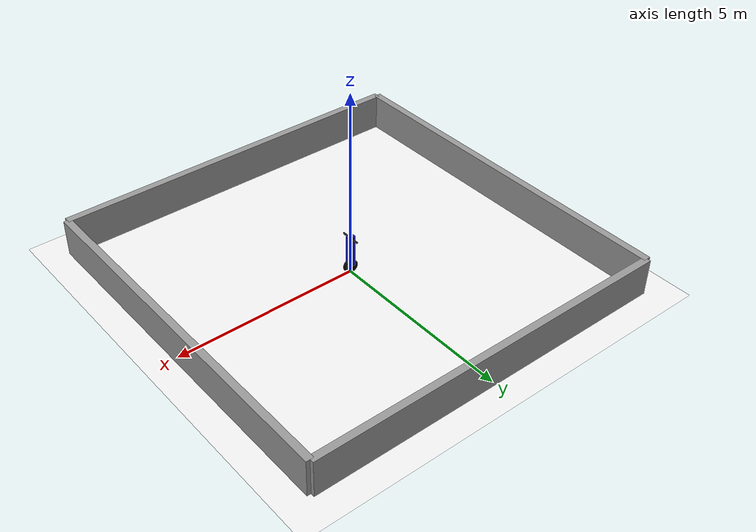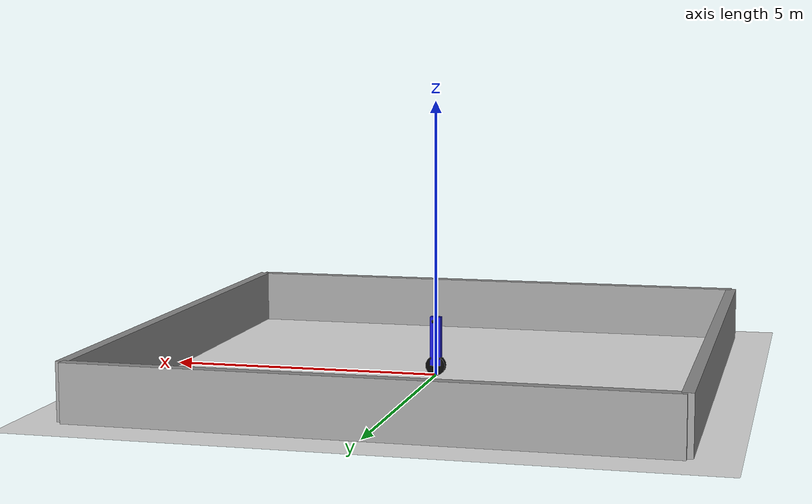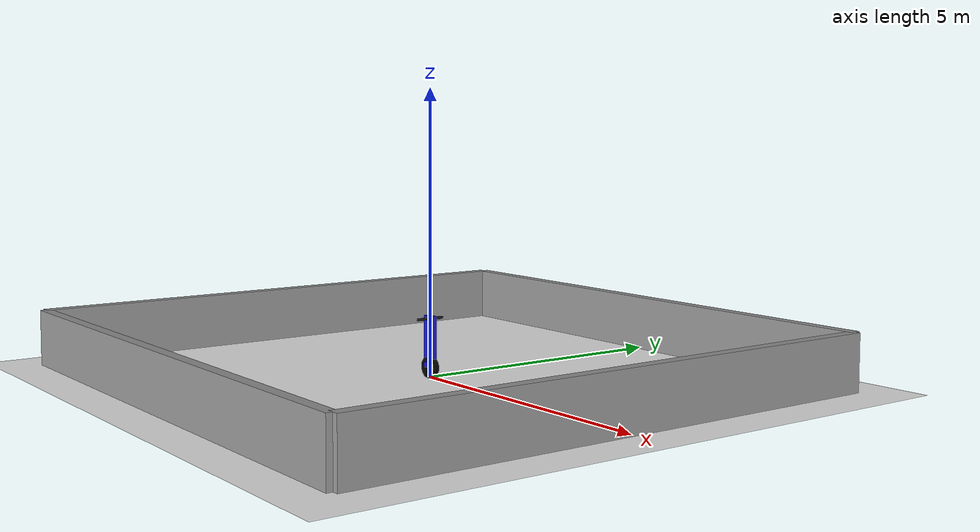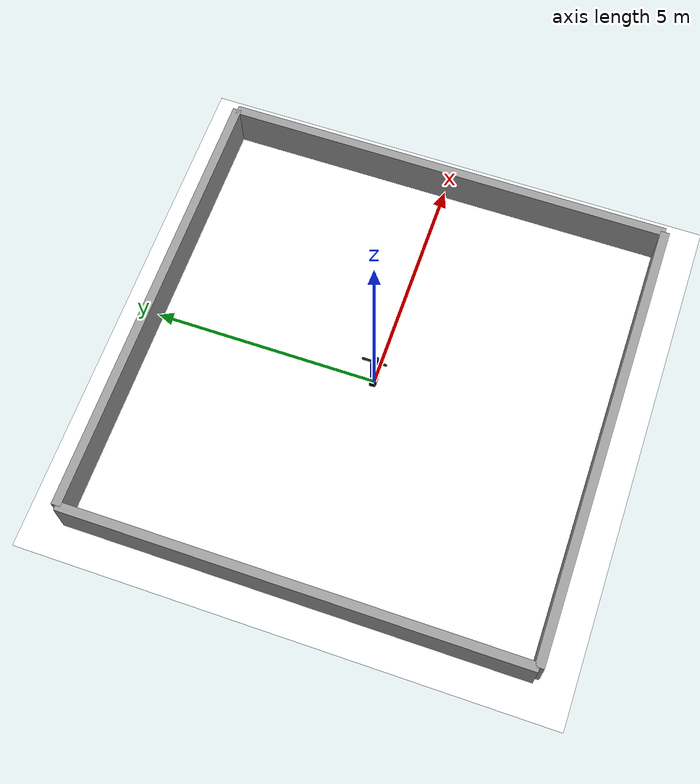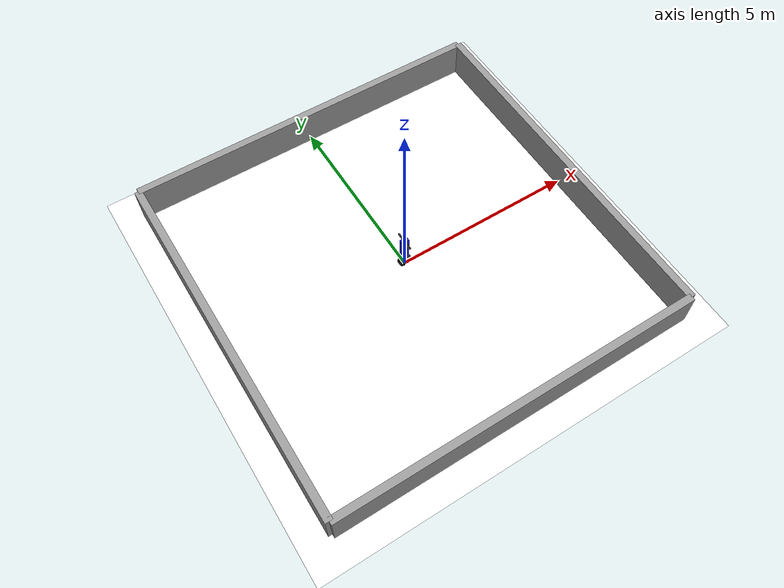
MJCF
<mujoco model="simple_segway_inverted_pendulum">

  <compiler angle="radian"/>
  <option timestep="0.002" gravity="0 0 -9.81" integrator="Euler"/>
  <visual>
    <headlight diffuse="0.8 0.8 0.8"
              ambient="0.6 0.6 0.6"
              specular="0.3 0.3 0.3"/>
  </visual>
  <default>
    <joint damping="0.01" armature="0.001"/>
    <geom friction="1.2 0.01 0.001"/>
  </default>

  <worldbody>
    <light pos="0 0 6" dir="0 0 -1" diffuse="1 1 1" specular="0.5 0.5 0.5"/>
    <geom name="ground"
          type="plane"
          size="10 10 0.1"
          rgba="0.95 0.95 0.95 1"/>
<!-- Boundary walls -->
    <geom name="wall_left"
          type="box"
          pos="-5 0 0.5"
          size="0.1 5 0.5"
          rgba="0.6 0.6 0.6 1"/>

    <geom name="wall_right"
          type="box"
          pos="5 0 0.5"
          size="0.1 5 0.5"
          rgba="0.6 0.6 0.6 1"/>

    <geom name="wall_back"
          type="box"
          pos="0 -5 0.5"
          size="5 0.1 0.5"
          rgba="0.6 0.6 0.6 1"/>

    <geom name="wall_front"
          type="box"
          pos="0 5 0.5"
          size="5 0.1 0.5"
          rgba="0.6 0.6 0.6 1"/>
    <!-- Main Segway body -->
    <body name="segway" pos="0 0 0.18">

      <!-- The whole Segway can move in the x-z plane -->
      <joint name="x_slide" type="slide" axis="1 0 0"/>
      <joint name="body_pitch" type="hinge" axis="0 1 0"/>

      <!-- Wheel visual only — no collision (contype/conaffinity=0).
           z is fixed by x_slide+body_pitch; ground contact would create
           spurious forces when the body pitches. -->
      <geom name="wheel"
            type="cylinder"
            size="0.18 0.06"
            pos="0 0 0"
            euler="1.5708 0 0"
            mass="0.5"
            rgba="0.02 0.02 0.02 1"
            contype="0"
            conaffinity="0"/>

      <!-- Upright body -->
      <geom name="body"
            type="box"
            size="0.10 0.06 0.45"
            pos="0 0 0.45"
            mass="8.0"
            rgba="0.1 0.1 0.8 1"/>

      <!-- Handlebar -->
      <geom name="handle"
            type="capsule"
            fromto="0 -0.25 0.85 0 0.25 0.85"
            size="0.025"
            mass="1.0"
            rgba="0.1 0.1 0.1 1"/>

    </body>
  </worldbody>

  <actuator>
    <!-- This applies horizontal force, like the simple cart-pole model -->
    <motor name="drive_motor"
           joint="x_slide"
           gear="1"
           ctrllimited="true"
           ctrlrange="-100 100"/>
  </actuator>

</mujoco>
